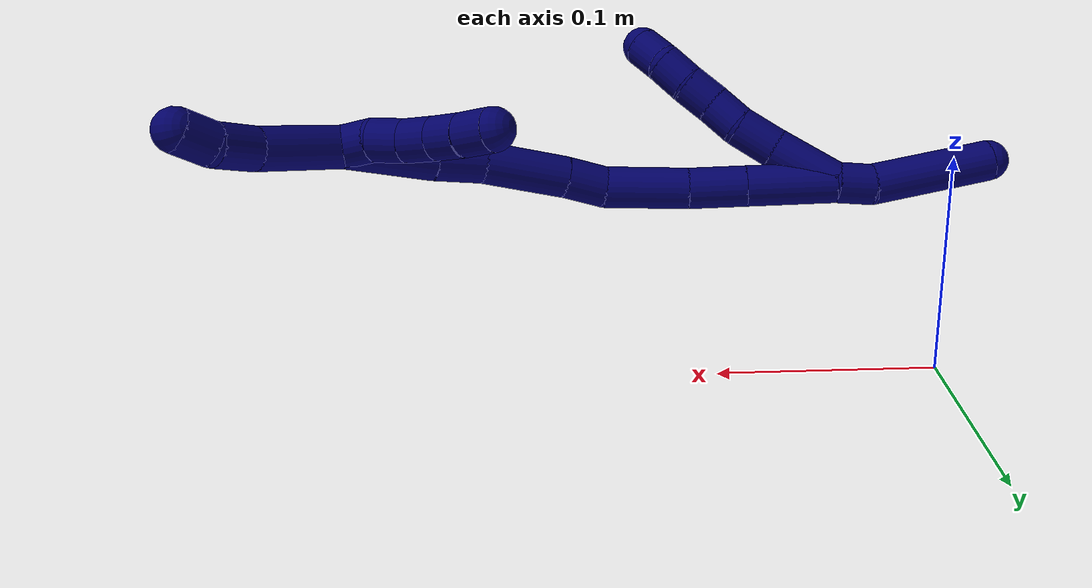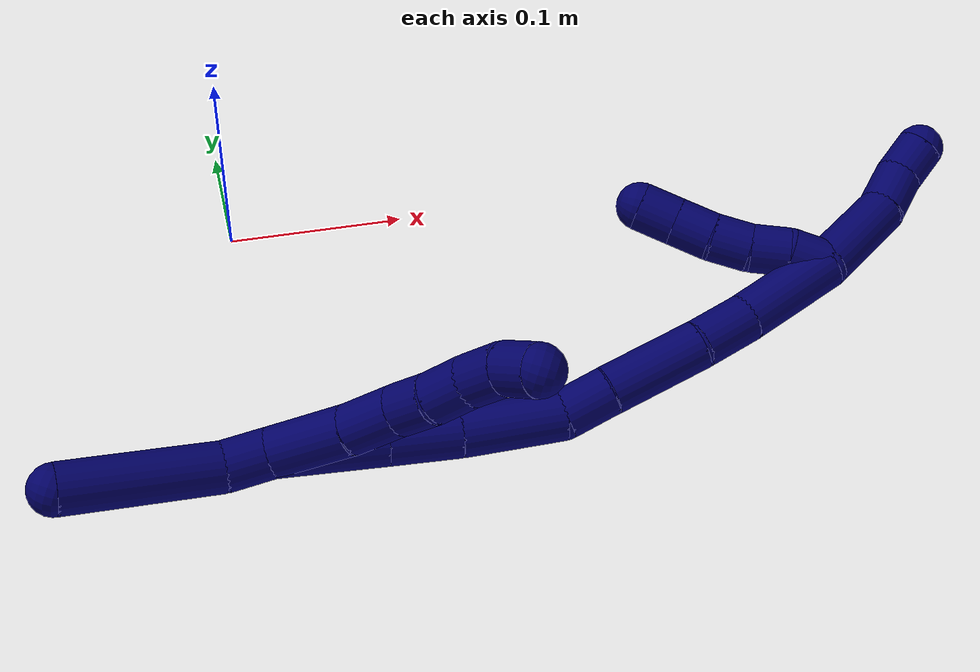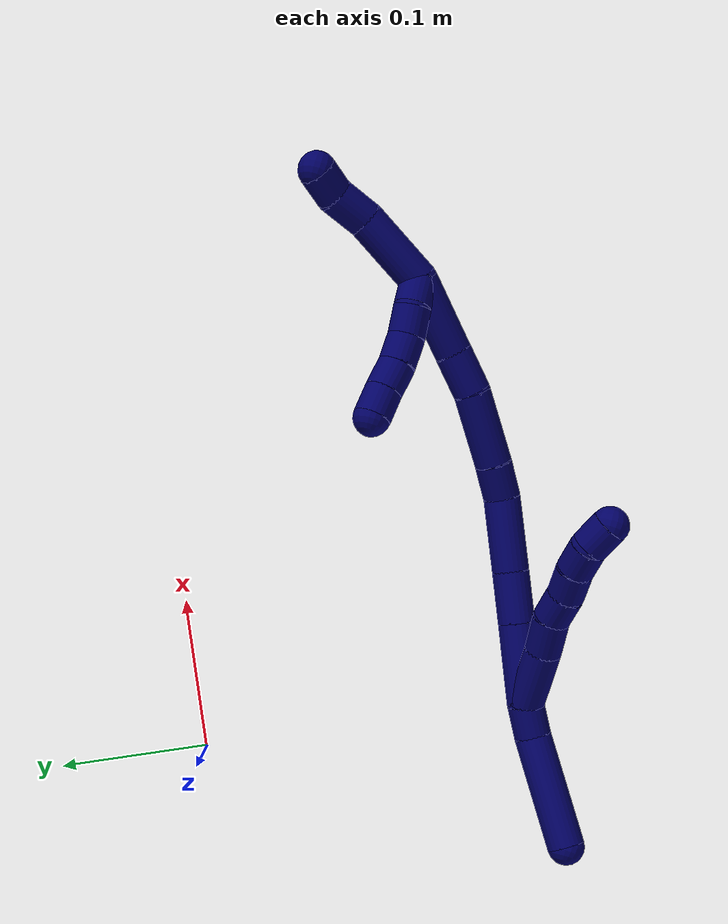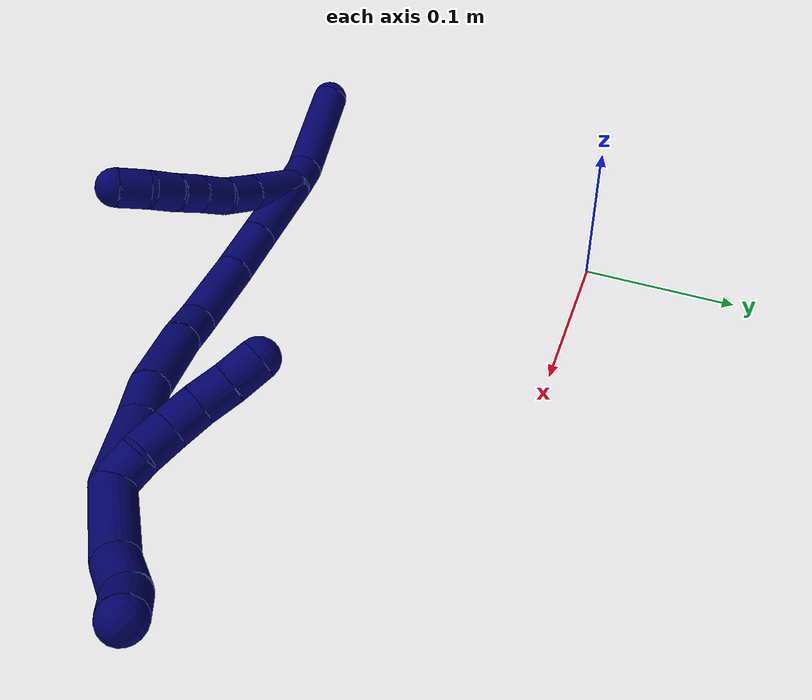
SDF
<sdf version="1.7">
 <world name="default">
  <model name="7">
   <static>0</static>
   <link name="7">
    <collision name="collision-cylinder-e_1_2_8">
     <pose>0.012356 -0.005308 -0.016341 2.8275 0.623466 2.2281</pose>
     <geometry><cylinder><radius>0.0125</radius><length>0.042326</length></cylinder></geometry>
     <surface>
      <friction><ode><mu>1.16</mu><mu2>1.16</mu2><slip1>0</slip1><slip2>0</slip2></ode></friction>
      <contact><ode><kp>1e+06</kp><kd>1</kd><max_vel>0</max_vel><min_depth>0.001</min_depth></ode></contact>
     </surface>
    </collision>
    <visual name="visual-cylinder-e_1_2_8">
     <pose>0.012356 -0.005308 -0.016341 2.8275 0.623466 2.2281</pose>
     <geometry><cylinder><radius>0.0125</radius><length>0.042326</length></cylinder></geometry>
     <material><ambient>0.003922 0 0.403922 1</ambient></material>
    </visual>
    <collision name="collision-cylinder-e_2_8_9">
     <pose>0.033234 -0.013397 -0.042119 2.85502 0.713821 2.40324</pose>
     <geometry><cylinder><radius>0.0125</radius><length>0.026033</length></cylinder></geometry>
     <surface>
      <friction><ode><mu>1.16</mu><mu2>1.16</mu2><slip1>0</slip1><slip2>0</slip2></ode></friction>
      <contact><ode><kp>1e+06</kp><kd>1</kd><max_vel>0</max_vel><min_depth>0.001</min_depth></ode></contact>
     </surface>
    </collision>
    <visual name="visual-cylinder-e_2_8_9">
     <pose>0.033234 -0.013397 -0.042119 2.85502 0.713821 2.40324</pose>
     <geometry><cylinder><radius>0.0125</radius><length>0.026033</length></cylinder></geometry>
     <material><ambient>0.003922 0 0.403922 1</ambient></material>
    </visual>
    <collision name="collision-cylinder-e_3_9_10">
     <pose>0.047937 -0.020838 -0.058572 2.55525 0.633104 1.6524</pose>
     <geometry><cylinder><radius>0.0125</radius><length>0.020892</length></cylinder></geometry>
     <surface>
      <friction><ode><mu>1.16</mu><mu2>1.16</mu2><slip1>0</slip1><slip2>0</slip2></ode></friction>
      <contact><ode><kp>1e+06</kp><kd>1</kd><max_vel>0</max_vel><min_depth>0.001</min_depth></ode></contact>
     </surface>
    </collision>
    <visual name="visual-cylinder-e_3_9_10">
     <pose>0.047937 -0.020838 -0.058572 2.55525 0.633104 1.6524</pose>
     <geometry><cylinder><radius>0.0125</radius><length>0.020892</length></cylinder></geometry>
     <material><ambient>0.003922 0 0.403922 1</ambient></material>
    </visual>
    <collision name="collision-cylinder-e_4_10_11">
     <pose>0.061186 -0.028694 -0.072389 2.70244 0.754746 2.11599</pose>
     <geometry><cylinder><radius>0.0125</radius><length>0.020636</length></cylinder></geometry>
     <surface>
      <friction><ode><mu>1.16</mu><mu2>1.16</mu2><slip1>0</slip1><slip2>0</slip2></ode></friction>
      <contact><ode><kp>1e+06</kp><kd>1</kd><max_vel>0</max_vel><min_depth>0.001</min_depth></ode></contact>
     </surface>
    </collision>
    <visual name="visual-cylinder-e_4_10_11">
     <pose>0.061186 -0.028694 -0.072389 2.70244 0.754746 2.11599</pose>
     <geometry><cylinder><radius>0.0125</radius><length>0.020636</length></cylinder></geometry>
     <material><ambient>0.003922 0 0.403922 1</ambient></material>
    </visual>
    <collision name="collision-cylinder-e_5_11_12">
     <pose>0.074312 -0.036343 -0.085824 2.5502 0.648714 1.66935</pose>
     <geometry><cylinder><radius>0.0125</radius><length>0.02005</length></cylinder></geometry>
     <surface>
      <friction><ode><mu>1.16</mu><mu2>1.16</mu2><slip1>0</slip1><slip2>0</slip2></ode></friction>
      <contact><ode><kp>1e+06</kp><kd>1</kd><max_vel>0</max_vel><min_depth>0.001</min_depth></ode></contact>
     </surface>
    </collision>
    <visual name="visual-cylinder-e_5_11_12">
     <pose>0.074312 -0.036343 -0.085824 2.5502 0.648714 1.66935</pose>
     <geometry><cylinder><radius>0.0125</radius><length>0.02005</length></cylinder></geometry>
     <material><ambient>0.003922 0 0.403922 1</ambient></material>
    </visual>
    <collision name="collision-cylinder-e_6_12_6">
     <pose>0.08348 -0.046884 -0.099798 2.44935 0.315319 0.830393</pose>
     <geometry><cylinder><radius>0.0125</radius><length>0.020063</length></cylinder></geometry>
     <surface>
      <friction><ode><mu>1.16</mu><mu2>1.16</mu2><slip1>0</slip1><slip2>0</slip2></ode></friction>
      <contact><ode><kp>1e+06</kp><kd>1</kd><max_vel>0</max_vel><min_depth>0.001</min_depth></ode></contact>
     </surface>
    </collision>
    <visual name="visual-cylinder-e_6_12_6">
     <pose>0.08348 -0.046884 -0.099798 2.44935 0.315319 0.830393</pose>
     <geometry><cylinder><radius>0.0125</radius><length>0.020063</length></cylinder></geometry>
     <material><ambient>0.003922 0 0.403922 1</ambient></material>
    </visual>
    <collision name="collision-cylinder-e_1_2_13">
     <pose>-0.005956 -0.003501 0.009419 0.355884 -0.535062 -0.098512</pose>
     <geometry><cylinder><radius>0.0125</radius><length>0.023362</length></cylinder></geometry>
     <surface>
      <friction><ode><mu>1.16</mu><mu2>1.16</mu2><slip1>0</slip1><slip2>0</slip2></ode></friction>
      <contact><ode><kp>1e+06</kp><kd>1</kd><max_vel>0</max_vel><min_depth>0.001</min_depth></ode></contact>
     </surface>
    </collision>
    <visual name="visual-cylinder-e_1_2_13">
     <pose>-0.005956 -0.003501 0.009419 0.355884 -0.535062 -0.098512</pose>
     <geometry><cylinder><radius>0.0125</radius><length>0.023362</length></cylinder></geometry>
     <material><ambient>0.003922 0 0.403922 1</ambient></material>
    </visual>
    <collision name="collision-cylinder-e_2_13_5">
     <pose>-0.023706 -0.024259 0.050954 0.49305 -0.312864 -0.079337</pose>
     <geometry><cylinder><radius>0.0125</radius><length>0.076638</length></cylinder></geometry>
     <surface>
      <friction><ode><mu>1.16</mu><mu2>1.16</mu2><slip1>0</slip1><slip2>0</slip2></ode></friction>
      <contact><ode><kp>1e+06</kp><kd>1</kd><max_vel>0</max_vel><min_depth>0.001</min_depth></ode></contact>
     </surface>
    </collision>
    <visual name="visual-cylinder-e_2_13_5">
     <pose>-0.023706 -0.024259 0.050954 0.49305 -0.312864 -0.079337</pose>
     <geometry><cylinder><radius>0.0125</radius><length>0.076638</length></cylinder></geometry>
     <material><ambient>0.003922 0 0.403922 1</ambient></material>
    </visual>
    <collision name="collision-cylinder-e_1_2_14">
     <pose>0.009561 0.00713 -0.024487 -2.85825 0.358658 -1.80833</pose>
     <geometry><cylinder><radius>0.0125</radius><length>0.054474</length></cylinder></geometry>
     <surface>
      <friction><ode><mu>1.16</mu><mu2>1.16</mu2><slip1>0</slip1><slip2>0</slip2></ode></friction>
      <contact><ode><kp>1e+06</kp><kd>1</kd><max_vel>0</max_vel><min_depth>0.001</min_depth></ode></contact>
     </surface>
    </collision>
    <visual name="visual-cylinder-e_1_2_14">
     <pose>0.009561 0.00713 -0.024487 -2.85825 0.358658 -1.80833</pose>
     <geometry><cylinder><radius>0.0125</radius><length>0.054474</length></cylinder></geometry>
     <material><ambient>0.003922 0 0.403922 1</ambient></material>
    </visual>
    <collision name="collision-cylinder-e_2_14_15">
     <pose>0.025372 0.018957 -0.064822 -2.85344 0.361533 -1.79967</pose>
     <geometry><cylinder><radius>0.0125</radius><length>0.035344</length></cylinder></geometry>
     <surface>
      <friction><ode><mu>1.16</mu><mu2>1.16</mu2><slip1>0</slip1><slip2>0</slip2></ode></friction>
      <contact><ode><kp>1e+06</kp><kd>1</kd><max_vel>0</max_vel><min_depth>0.001</min_depth></ode></contact>
     </surface>
    </collision>
    <visual name="visual-cylinder-e_2_14_15">
     <pose>0.025372 0.018957 -0.064822 -2.85344 0.361533 -1.79967</pose>
     <geometry><cylinder><radius>0.0125</radius><length>0.035344</length></cylinder></geometry>
     <material><ambient>0.003922 0 0.403922 1</ambient></material>
    </visual>
    <collision name="collision-cylinder-e_3_15_16">
     <pose>0.042139 0.029939 -0.103071 -2.86808 0.424532 -2.00504</pose>
     <geometry><cylinder><radius>0.0125</radius><length>0.051065</length></cylinder></geometry>
     <surface>
      <friction><ode><mu>1.16</mu><mu2>1.16</mu2><slip1>0</slip1><slip2>0</slip2></ode></friction>
      <contact><ode><kp>1e+06</kp><kd>1</kd><max_vel>0</max_vel><min_depth>0.001</min_depth></ode></contact>
     </surface>
    </collision>
    <visual name="visual-cylinder-e_3_15_16">
     <pose>0.042139 0.029939 -0.103071 -2.86808 0.424532 -2.00504</pose>
     <geometry><cylinder><radius>0.0125</radius><length>0.051065</length></cylinder></geometry>
     <material><ambient>0.003922 0 0.403922 1</ambient></material>
    </visual>
    <collision name="collision-cylinder-e_4_16_17">
     <pose>0.061292 0.039162 -0.134226 -2.8177 0.751966 -2.35679</pose>
     <geometry><cylinder><radius>0.0125</radius><length>0.025285</length></cylinder></geometry>
     <surface>
      <friction><ode><mu>1.16</mu><mu2>1.16</mu2><slip1>0</slip1><slip2>0</slip2></ode></friction>
      <contact><ode><kp>1e+06</kp><kd>1</kd><max_vel>0</max_vel><min_depth>0.001</min_depth></ode></contact>
     </surface>
    </collision>
    <visual name="visual-cylinder-e_4_16_17">
     <pose>0.061292 0.039162 -0.134226 -2.8177 0.751966 -2.35679</pose>
     <geometry><cylinder><radius>0.0125</radius><length>0.025285</length></cylinder></geometry>
     <material><ambient>0.003922 0 0.403922 1</ambient></material>
    </visual>
    <collision name="collision-cylinder-e_5_17_18">
     <pose>0.086438 0.049645 -0.160792 -2.74096 0.706493 -2.13488</pose>
     <geometry><cylinder><radius>0.0125</radius><length>0.050864</length></cylinder></geometry>
     <surface>
      <friction><ode><mu>1.16</mu><mu2>1.16</mu2><slip1>0</slip1><slip2>0</slip2></ode></friction>
      <contact><ode><kp>1e+06</kp><kd>1</kd><max_vel>0</max_vel><min_depth>0.001</min_depth></ode></contact>
     </surface>
    </collision>
    <visual name="visual-cylinder-e_5_17_18">
     <pose>0.086438 0.049645 -0.160792 -2.74096 0.706493 -2.13488</pose>
     <geometry><cylinder><radius>0.0125</radius><length>0.050864</length></cylinder></geometry>
     <material><ambient>0.003922 0 0.403922 1</ambient></material>
    </visual>
    <collision name="collision-cylinder-e_6_18_19">
     <pose>0.11212 0.063833 -0.188192 -2.53564 0.666394 -1.67242</pose>
     <geometry><cylinder><radius>0.0125</radius><length>0.029676</length></cylinder></geometry>
     <surface>
      <friction><ode><mu>1.16</mu><mu2>1.16</mu2><slip1>0</slip1><slip2>0</slip2></ode></friction>
      <contact><ode><kp>1e+06</kp><kd>1</kd><max_vel>0</max_vel><min_depth>0.001</min_depth></ode></contact>
     </surface>
    </collision>
    <visual name="visual-cylinder-e_6_18_19">
     <pose>0.11212 0.063833 -0.188192 -2.53564 0.666394 -1.67242</pose>
     <geometry><cylinder><radius>0.0125</radius><length>0.029676</length></cylinder></geometry>
     <material><ambient>0.003922 0 0.403922 1</ambient></material>
    </visual>
    <collision name="collision-cylinder-e_7_19_1">
     <pose>0.139424 0.081296 -0.214031 -2.55422 0.748443 -1.82913</pose>
     <geometry><cylinder><radius>0.0125</radius><length>0.053292</length></cylinder></geometry>
     <surface>
      <friction><ode><mu>1.16</mu><mu2>1.16</mu2><slip1>0</slip1><slip2>0</slip2></ode></friction>
      <contact><ode><kp>1e+06</kp><kd>1</kd><max_vel>0</max_vel><min_depth>0.001</min_depth></ode></contact>
     </surface>
    </collision>
    <visual name="visual-cylinder-e_7_19_1">
     <pose>0.139424 0.081296 -0.214031 -2.55422 0.748443 -1.82913</pose>
     <geometry><cylinder><radius>0.0125</radius><length>0.053292</length></cylinder></geometry>
     <material><ambient>0.003922 0 0.403922 1</ambient></material>
    </visual>
    <collision name="collision-cylinder-e_1_1_20">
     <pose>0.174347 0.108664 -0.241822 -2.17966 0.694103 -1.21217</pose>
     <geometry><cylinder><radius>0.0125</radius><length>0.052493</length></cylinder></geometry>
     <surface>
      <friction><ode><mu>1.16</mu><mu2>1.16</mu2><slip1>0</slip1><slip2>0</slip2></ode></friction>
      <contact><ode><kp>1e+06</kp><kd>1</kd><max_vel>0</max_vel><min_depth>0.001</min_depth></ode></contact>
     </surface>
    </collision>
    <visual name="visual-cylinder-e_1_1_20">
     <pose>0.174347 0.108664 -0.241822 -2.17966 0.694103 -1.21217</pose>
     <geometry><cylinder><radius>0.0125</radius><length>0.052493</length></cylinder></geometry>
     <material><ambient>0.003922 0 0.403922 1</ambient></material>
    </visual>
    <collision name="collision-cylinder-e_2_20_21">
     <pose>0.201029 0.133591 -0.256223 -1.90008 0.840717 -1.11739</pose>
     <geometry><cylinder><radius>0.0125</radius><length>0.026553</length></cylinder></geometry>
     <surface>
      <friction><ode><mu>1.16</mu><mu2>1.16</mu2><slip1>0</slip1><slip2>0</slip2></ode></friction>
      <contact><ode><kp>1e+06</kp><kd>1</kd><max_vel>0</max_vel><min_depth>0.001</min_depth></ode></contact>
     </surface>
    </collision>
    <visual name="visual-cylinder-e_2_20_21">
     <pose>0.201029 0.133591 -0.256223 -1.90008 0.840717 -1.11739</pose>
     <geometry><cylinder><radius>0.0125</radius><length>0.026553</length></cylinder></geometry>
     <material><ambient>0.003922 0 0.403922 1</ambient></material>
    </visual>
    <collision name="collision-cylinder-e_3_21_4">
     <pose>0.220085 0.145641 -0.262597 -2.33396 1.06468 -1.88647</pose>
     <geometry><cylinder><radius>0.0125</radius><length>0.020954</length></cylinder></geometry>
     <surface>
      <friction><ode><mu>1.16</mu><mu2>1.16</mu2><slip1>0</slip1><slip2>0</slip2></ode></friction>
      <contact><ode><kp>1e+06</kp><kd>1</kd><max_vel>0</max_vel><min_depth>0.001</min_depth></ode></contact>
     </surface>
    </collision>
    <visual name="visual-cylinder-e_3_21_4">
     <pose>0.220085 0.145641 -0.262597 -2.33396 1.06468 -1.88647</pose>
     <geometry><cylinder><radius>0.0125</radius><length>0.020954</length></cylinder></geometry>
     <material><ambient>0.003922 0 0.403922 1</ambient></material>
    </visual>
    <collision name="collision-cylinder-e_1_1_22">
     <pose>0.157788 0.091493 -0.220306 0.062387 0.023114 0.000721</pose>
     <geometry><cylinder><radius>0.0125</radius><length>0.02</length></cylinder></geometry>
     <surface>
      <friction><ode><mu>1.16</mu><mu2>1.16</mu2><slip1>0</slip1><slip2>0</slip2></ode></friction>
      <contact><ode><kp>1e+06</kp><kd>1</kd><max_vel>0</max_vel><min_depth>0.001</min_depth></ode></contact>
     </surface>
    </collision>
    <visual name="visual-cylinder-e_1_1_22">
     <pose>0.157788 0.091493 -0.220306 0.062387 0.023114 0.000721</pose>
     <geometry><cylinder><radius>0.0125</radius><length>0.02</length></cylinder></geometry>
     <material><ambient>0.003922 0 0.403922 1</ambient></material>
    </visual>
    <collision name="collision-cylinder-e_2_22_23">
     <pose>0.155926 0.090915 -0.200549 -0.00467 -0.210865 0.000494</pose>
     <geometry><cylinder><radius>0.0125</radius><length>0.02</length></cylinder></geometry>
     <surface>
      <friction><ode><mu>1.16</mu><mu2>1.16</mu2><slip1>0</slip1><slip2>0</slip2></ode></friction>
      <contact><ode><kp>1e+06</kp><kd>1</kd><max_vel>0</max_vel><min_depth>0.001</min_depth></ode></contact>
     </surface>
    </collision>
    <visual name="visual-cylinder-e_2_22_23">
     <pose>0.155926 0.090915 -0.200549 -0.00467 -0.210865 0.000494</pose>
     <geometry><cylinder><radius>0.0125</radius><length>0.02</length></cylinder></geometry>
     <material><ambient>0.003922 0 0.403922 1</ambient></material>
    </visual>
    <collision name="collision-cylinder-e_3_23_24">
     <pose>0.153504 0.091494 -0.180791 -0.053365 -0.032872 0.000877</pose>
     <geometry><cylinder><radius>0.0125</radius><length>0.02</length></cylinder></geometry>
     <surface>
      <friction><ode><mu>1.16</mu><mu2>1.16</mu2><slip1>0</slip1><slip2>0</slip2></ode></friction>
      <contact><ode><kp>1e+06</kp><kd>1</kd><max_vel>0</max_vel><min_depth>0.001</min_depth></ode></contact>
     </surface>
    </collision>
    <visual name="visual-cylinder-e_3_23_24">
     <pose>0.153504 0.091494 -0.180791 -0.053365 -0.032872 0.000877</pose>
     <geometry><cylinder><radius>0.0125</radius><length>0.02</length></cylinder></geometry>
     <material><ambient>0.003922 0 0.403922 1</ambient></material>
    </visual>
    <collision name="collision-cylinder-e_4_24_25">
     <pose>0.153958 0.093521 -0.160953 -0.150432 0.078271 -0.005901</pose>
     <geometry><cylinder><radius>0.0125</radius><length>0.02</length></cylinder></geometry>
     <surface>
      <friction><ode><mu>1.16</mu><mu2>1.16</mu2><slip1>0</slip1><slip2>0</slip2></ode></friction>
      <contact><ode><kp>1e+06</kp><kd>1</kd><max_vel>0</max_vel><min_depth>0.001</min_depth></ode></contact>
     </surface>
    </collision>
    <visual name="visual-cylinder-e_4_24_25">
     <pose>0.153958 0.093521 -0.160953 -0.150432 0.078271 -0.005901</pose>
     <geometry><cylinder><radius>0.0125</radius><length>0.02</length></cylinder></geometry>
     <material><ambient>0.003922 0 0.403922 1</ambient></material>
    </visual>
    <collision name="collision-cylinder-e_5_25_3">
     <pose>0.155622 0.095813 -0.141168 -0.080217 0.08839 -0.003549</pose>
     <geometry><cylinder><radius>0.0125</radius><length>0.02</length></cylinder></geometry>
     <surface>
      <friction><ode><mu>1.16</mu><mu2>1.16</mu2><slip1>0</slip1><slip2>0</slip2></ode></friction>
      <contact><ode><kp>1e+06</kp><kd>1</kd><max_vel>0</max_vel><min_depth>0.001</min_depth></ode></contact>
     </surface>
    </collision>
    <visual name="visual-cylinder-e_5_25_3">
     <pose>0.155622 0.095813 -0.141168 -0.080217 0.08839 -0.003549</pose>
     <geometry><cylinder><radius>0.0125</radius><length>0.02</length></cylinder></geometry>
     <material><ambient>0.003922 0 0.403922 1</ambient></material>
    </visual>
    <collision name="collision-sphere-3">
     <pose>0.156505 0.096611 -0.131239 0 -0 0</pose>
     <geometry><sphere><radius>0.0125</radius></sphere></geometry>
     <surface>
      <friction><ode><mu>1.16</mu><mu2>1.16</mu2><slip1>0</slip1><slip2>0</slip2></ode></friction>
      <contact><ode><kp>1e+06</kp><kd>1</kd><max_vel>0</max_vel><min_depth>0.001</min_depth></ode></contact>
     </surface>
    </collision>
    <visual name="visual-sphere-3">
     <pose>0.156505 0.096611 -0.131239 0 -0 0</pose>
     <geometry><sphere><radius>0.0125</radius></sphere></geometry>
     <material><ambient>0.003922 0 0.403922 1</ambient></material>
    </visual>
    <collision name="collision-sphere-25">
     <pose>0.154739 0.095015 -0.151097 0 -0 0</pose>
     <geometry><sphere><radius>0.0125</radius></sphere></geometry>
     <surface>
      <friction><ode><mu>1.16</mu><mu2>1.16</mu2><slip1>0</slip1><slip2>0</slip2></ode></friction>
      <contact><ode><kp>1e+06</kp><kd>1</kd><max_vel>0</max_vel><min_depth>0.001</min_depth></ode></contact>
     </surface>
    </collision>
    <visual name="visual-sphere-25">
     <pose>0.154739 0.095015 -0.151097 0 -0 0</pose>
     <geometry><sphere><radius>0.0125</radius></sphere></geometry>
     <material><ambient>0.003922 0 0.403922 1</ambient></material>
    </visual>
    <collision name="collision-sphere-24">
     <pose>0.153176 0.092027 -0.17081 0 -0 0</pose>
     <geometry><sphere><radius>0.0125</radius></sphere></geometry>
     <surface>
      <friction><ode><mu>1.16</mu><mu2>1.16</mu2><slip1>0</slip1><slip2>0</slip2></ode></friction>
      <contact><ode><kp>1e+06</kp><kd>1</kd><max_vel>0</max_vel><min_depth>0.001</min_depth></ode></contact>
     </surface>
    </collision>
    <visual name="visual-sphere-24">
     <pose>0.153176 0.092027 -0.17081 0 -0 0</pose>
     <geometry><sphere><radius>0.0125</radius></sphere></geometry>
     <material><ambient>0.003922 0 0.403922 1</ambient></material>
    </visual>
    <collision name="collision-sphere-23">
     <pose>0.153833 0.090961 -0.190771 0 -0 0</pose>
     <geometry><sphere><radius>0.0125</radius></sphere></geometry>
     <surface>
      <friction><ode><mu>1.16</mu><mu2>1.16</mu2><slip1>0</slip1><slip2>0</slip2></ode></friction>
      <contact><ode><kp>1e+06</kp><kd>1</kd><max_vel>0</max_vel><min_depth>0.001</min_depth></ode></contact>
     </surface>
    </collision>
    <visual name="visual-sphere-23">
     <pose>0.153833 0.090961 -0.190771 0 -0 0</pose>
     <geometry><sphere><radius>0.0125</radius></sphere></geometry>
     <material><ambient>0.003922 0 0.403922 1</ambient></material>
    </visual>
    <collision name="collision-sphere-22">
     <pose>0.158019 0.090869 -0.210328 0 -0 0</pose>
     <geometry><sphere><radius>0.0125</radius></sphere></geometry>
     <surface>
      <friction><ode><mu>1.16</mu><mu2>1.16</mu2><slip1>0</slip1><slip2>0</slip2></ode></friction>
      <contact><ode><kp>1e+06</kp><kd>1</kd><max_vel>0</max_vel><min_depth>0.001</min_depth></ode></contact>
     </surface>
    </collision>
    <visual name="visual-sphere-22">
     <pose>0.158019 0.090869 -0.210328 0 -0 0</pose>
     <geometry><sphere><radius>0.0125</radius></sphere></geometry>
     <material><ambient>0.003922 0 0.403922 1</ambient></material>
    </visual>
    <collision name="collision-sphere-4">
     <pose>0.229249 0.149311 -0.266108 0 -0 0</pose>
     <geometry><sphere><radius>0.0125</radius></sphere></geometry>
     <surface>
      <friction><ode><mu>1.16</mu><mu2>1.16</mu2><slip1>0</slip1><slip2>0</slip2></ode></friction>
      <contact><ode><kp>1e+06</kp><kd>1</kd><max_vel>0</max_vel><min_depth>0.001</min_depth></ode></contact>
     </surface>
    </collision>
    <visual name="visual-sphere-4">
     <pose>0.229249 0.149311 -0.266108 0 -0 0</pose>
     <geometry><sphere><radius>0.0125</radius></sphere></geometry>
     <material><ambient>0.003922 0 0.403922 1</ambient></material>
    </visual>
    <collision name="collision-sphere-21">
     <pose>0.210921 0.14197 -0.259086 0 -0 0</pose>
     <geometry><sphere><radius>0.0125</radius></sphere></geometry>
     <surface>
      <friction><ode><mu>1.16</mu><mu2>1.16</mu2><slip1>0</slip1><slip2>0</slip2></ode></friction>
      <contact><ode><kp>1e+06</kp><kd>1</kd><max_vel>0</max_vel><min_depth>0.001</min_depth></ode></contact>
     </surface>
    </collision>
    <visual name="visual-sphere-21">
     <pose>0.210921 0.14197 -0.259086 0 -0 0</pose>
     <geometry><sphere><radius>0.0125</radius></sphere></geometry>
     <material><ambient>0.003922 0 0.403922 1</ambient></material>
    </visual>
    <collision name="collision-sphere-20">
     <pose>0.191136 0.125213 -0.25336 0 -0 0</pose>
     <geometry><sphere><radius>0.0125</radius></sphere></geometry>
     <surface>
      <friction><ode><mu>1.16</mu><mu2>1.16</mu2><slip1>0</slip1><slip2>0</slip2></ode></friction>
      <contact><ode><kp>1e+06</kp><kd>1</kd><max_vel>0</max_vel><min_depth>0.001</min_depth></ode></contact>
     </surface>
    </collision>
    <visual name="visual-sphere-20">
     <pose>0.191136 0.125213 -0.25336 0 -0 0</pose>
     <geometry><sphere><radius>0.0125</radius></sphere></geometry>
     <material><ambient>0.003922 0 0.403922 1</ambient></material>
    </visual>
    <collision name="collision-sphere-12">
     <pose>0.080369 -0.040797 -0.092456 0 -0 0</pose>
     <geometry><sphere><radius>0.0125</radius></sphere></geometry>
     <surface>
      <friction><ode><mu>1.16</mu><mu2>1.16</mu2><slip1>0</slip1><slip2>0</slip2></ode></friction>
      <contact><ode><kp>1e+06</kp><kd>1</kd><max_vel>0</max_vel><min_depth>0.001</min_depth></ode></contact>
     </surface>
    </collision>
    <visual name="visual-sphere-12">
     <pose>0.080369 -0.040797 -0.092456 0 -0 0</pose>
     <geometry><sphere><radius>0.0125</radius></sphere></geometry>
     <material><ambient>0.003922 0 0.403922 1</ambient></material>
    </visual>
    <collision name="collision-sphere-11">
     <pose>0.068255 -0.031889 -0.079192 0 -0 0</pose>
     <geometry><sphere><radius>0.0125</radius></sphere></geometry>
     <surface>
      <friction><ode><mu>1.16</mu><mu2>1.16</mu2><slip1>0</slip1><slip2>0</slip2></ode></friction>
      <contact><ode><kp>1e+06</kp><kd>1</kd><max_vel>0</max_vel><min_depth>0.001</min_depth></ode></contact>
     </surface>
    </collision>
    <visual name="visual-sphere-11">
     <pose>0.068255 -0.031889 -0.079192 0 -0 0</pose>
     <geometry><sphere><radius>0.0125</radius></sphere></geometry>
     <material><ambient>0.003922 0 0.403922 1</ambient></material>
    </visual>
    <collision name="collision-sphere-10">
     <pose>0.054117 -0.025498 -0.065586 0 -0 0</pose>
     <geometry><sphere><radius>0.0125</radius></sphere></geometry>
     <surface>
      <friction><ode><mu>1.16</mu><mu2>1.16</mu2><slip1>0</slip1><slip2>0</slip2></ode></friction>
      <contact><ode><kp>1e+06</kp><kd>1</kd><max_vel>0</max_vel><min_depth>0.001</min_depth></ode></contact>
     </surface>
    </collision>
    <visual name="visual-sphere-10">
     <pose>0.054117 -0.025498 -0.065586 0 -0 0</pose>
     <geometry><sphere><radius>0.0125</radius></sphere></geometry>
     <material><ambient>0.003922 0 0.403922 1</ambient></material>
    </visual>
    <collision name="collision-sphere-9">
     <pose>0.041757 -0.016179 -0.051557 0 -0 0</pose>
     <geometry><sphere><radius>0.0125</radius></sphere></geometry>
     <surface>
      <friction><ode><mu>1.16</mu><mu2>1.16</mu2><slip1>0</slip1><slip2>0</slip2></ode></friction>
      <contact><ode><kp>1e+06</kp><kd>1</kd><max_vel>0</max_vel><min_depth>0.001</min_depth></ode></contact>
     </surface>
    </collision>
    <visual name="visual-sphere-9">
     <pose>0.041757 -0.016179 -0.051557 0 -0 0</pose>
     <geometry><sphere><radius>0.0125</radius></sphere></geometry>
     <material><ambient>0.003922 0 0.403922 1</ambient></material>
    </visual>
    <collision name="collision-sphere-2">
     <geometry><sphere><radius>0.0125</radius></sphere></geometry>
     <surface>
      <friction><ode><mu>1.16</mu><mu2>1.16</mu2><slip1>0</slip1><slip2>0</slip2></ode></friction>
      <contact><ode><kp>1e+06</kp><kd>1</kd><max_vel>0</max_vel><min_depth>0.001</min_depth></ode></contact>
     </surface>
    </collision>
    <visual name="visual-sphere-2">
     <geometry><sphere><radius>0.0125</radius></sphere></geometry>
     <material><ambient>0.003922 0 0.403922 1</ambient></material>
    </visual>
    <collision name="collision-sphere-19">
     <pose>0.121292 0.070476 -0.197779 0 -0 0</pose>
     <geometry><sphere><radius>0.0125</radius></sphere></geometry>
     <surface>
      <friction><ode><mu>1.16</mu><mu2>1.16</mu2><slip1>0</slip1><slip2>0</slip2></ode></friction>
      <contact><ode><kp>1e+06</kp><kd>1</kd><max_vel>0</max_vel><min_depth>0.001</min_depth></ode></contact>
     </surface>
    </collision>
    <visual name="visual-sphere-19">
     <pose>0.121292 0.070476 -0.197779 0 -0 0</pose>
     <geometry><sphere><radius>0.0125</radius></sphere></geometry>
     <material><ambient>0.003922 0 0.403922 1</ambient></material>
    </visual>
    <collision name="collision-sphere-8">
     <pose>0.024712 -0.010616 -0.032682 0 -0 0</pose>
     <geometry><sphere><radius>0.0125</radius></sphere></geometry>
     <surface>
      <friction><ode><mu>1.16</mu><mu2>1.16</mu2><slip1>0</slip1><slip2>0</slip2></ode></friction>
      <contact><ode><kp>1e+06</kp><kd>1</kd><max_vel>0</max_vel><min_depth>0.001</min_depth></ode></contact>
     </surface>
    </collision>
    <visual name="visual-sphere-8">
     <pose>0.024712 -0.010616 -0.032682 0 -0 0</pose>
     <geometry><sphere><radius>0.0125</radius></sphere></geometry>
     <material><ambient>0.003922 0 0.403922 1</ambient></material>
    </visual>
    <collision name="collision-sphere-6">
     <pose>0.086591 -0.052971 -0.107139 0 -0 0</pose>
     <geometry><sphere><radius>0.0125</radius></sphere></geometry>
     <surface>
      <friction><ode><mu>1.16</mu><mu2>1.16</mu2><slip1>0</slip1><slip2>0</slip2></ode></friction>
      <contact><ode><kp>1e+06</kp><kd>1</kd><max_vel>0</max_vel><min_depth>0.001</min_depth></ode></contact>
     </surface>
    </collision>
    <visual name="visual-sphere-6">
     <pose>0.086591 -0.052971 -0.107139 0 -0 0</pose>
     <geometry><sphere><radius>0.0125</radius></sphere></geometry>
     <material><ambient>0.003922 0 0.403922 1</ambient></material>
    </visual>
    <collision name="collision-sphere-13">
     <pose>-0.011912 -0.007002 0.018837 0 -0 0</pose>
     <geometry><sphere><radius>0.0125</radius></sphere></geometry>
     <surface>
      <friction><ode><mu>1.16</mu><mu2>1.16</mu2><slip1>0</slip1><slip2>0</slip2></ode></friction>
      <contact><ode><kp>1e+06</kp><kd>1</kd><max_vel>0</max_vel><min_depth>0.001</min_depth></ode></contact>
     </surface>
    </collision>
    <visual name="visual-sphere-13">
     <pose>-0.011912 -0.007002 0.018837 0 -0 0</pose>
     <geometry><sphere><radius>0.0125</radius></sphere></geometry>
     <material><ambient>0.003922 0 0.403922 1</ambient></material>
    </visual>
    <collision name="collision-sphere-5">
     <pose>-0.0355 -0.041515 0.08307 0 -0 0</pose>
     <geometry><sphere><radius>0.0125</radius></sphere></geometry>
     <surface>
      <friction><ode><mu>1.16</mu><mu2>1.16</mu2><slip1>0</slip1><slip2>0</slip2></ode></friction>
      <contact><ode><kp>1e+06</kp><kd>1</kd><max_vel>0</max_vel><min_depth>0.001</min_depth></ode></contact>
     </surface>
    </collision>
    <visual name="visual-sphere-5">
     <pose>-0.0355 -0.041515 0.08307 0 -0 0</pose>
     <geometry><sphere><radius>0.0125</radius></sphere></geometry>
     <material><ambient>0.003922 0 0.403922 1</ambient></material>
    </visual>
    <collision name="collision-sphere-14">
     <pose>0.019121 0.01426 -0.048974 0 -0 0</pose>
     <geometry><sphere><radius>0.0125</radius></sphere></geometry>
     <surface>
      <friction><ode><mu>1.16</mu><mu2>1.16</mu2><slip1>0</slip1><slip2>0</slip2></ode></friction>
      <contact><ode><kp>1e+06</kp><kd>1</kd><max_vel>0</max_vel><min_depth>0.001</min_depth></ode></contact>
     </surface>
    </collision>
    <visual name="visual-sphere-14">
     <pose>0.019121 0.01426 -0.048974 0 -0 0</pose>
     <geometry><sphere><radius>0.0125</radius></sphere></geometry>
     <material><ambient>0.003922 0 0.403922 1</ambient></material>
    </visual>
    <collision name="collision-sphere-15">
     <pose>0.031623 0.023655 -0.08067 0 -0 0</pose>
     <geometry><sphere><radius>0.0125</radius></sphere></geometry>
     <surface>
      <friction><ode><mu>1.16</mu><mu2>1.16</mu2><slip1>0</slip1><slip2>0</slip2></ode></friction>
      <contact><ode><kp>1e+06</kp><kd>1</kd><max_vel>0</max_vel><min_depth>0.001</min_depth></ode></contact>
     </surface>
    </collision>
    <visual name="visual-sphere-15">
     <pose>0.031623 0.023655 -0.08067 0 -0 0</pose>
     <geometry><sphere><radius>0.0125</radius></sphere></geometry>
     <material><ambient>0.003922 0 0.403922 1</ambient></material>
    </visual>
    <collision name="collision-sphere-16">
     <pose>0.052656 0.036223 -0.125472 0 -0 0</pose>
     <geometry><sphere><radius>0.0125</radius></sphere></geometry>
     <surface>
      <friction><ode><mu>1.16</mu><mu2>1.16</mu2><slip1>0</slip1><slip2>0</slip2></ode></friction>
      <contact><ode><kp>1e+06</kp><kd>1</kd><max_vel>0</max_vel><min_depth>0.001</min_depth></ode></contact>
     </surface>
    </collision>
    <visual name="visual-sphere-16">
     <pose>0.052656 0.036223 -0.125472 0 -0 0</pose>
     <geometry><sphere><radius>0.0125</radius></sphere></geometry>
     <material><ambient>0.003922 0 0.403922 1</ambient></material>
    </visual>
    <collision name="collision-sphere-17">
     <pose>0.069928 0.042101 -0.142979 0 -0 0</pose>
     <geometry><sphere><radius>0.0125</radius></sphere></geometry>
     <surface>
      <friction><ode><mu>1.16</mu><mu2>1.16</mu2><slip1>0</slip1><slip2>0</slip2></ode></friction>
      <contact><ode><kp>1e+06</kp><kd>1</kd><max_vel>0</max_vel><min_depth>0.001</min_depth></ode></contact>
     </surface>
    </collision>
    <visual name="visual-sphere-17">
     <pose>0.069928 0.042101 -0.142979 0 -0 0</pose>
     <geometry><sphere><radius>0.0125</radius></sphere></geometry>
     <material><ambient>0.003922 0 0.403922 1</ambient></material>
    </visual>
    <collision name="collision-sphere-18">
     <pose>0.102948 0.05719 -0.178605 0 -0 0</pose>
     <geometry><sphere><radius>0.0125</radius></sphere></geometry>
     <surface>
      <friction><ode><mu>1.16</mu><mu2>1.16</mu2><slip1>0</slip1><slip2>0</slip2></ode></friction>
      <contact><ode><kp>1e+06</kp><kd>1</kd><max_vel>0</max_vel><min_depth>0.001</min_depth></ode></contact>
     </surface>
    </collision>
    <visual name="visual-sphere-18">
     <pose>0.102948 0.05719 -0.178605 0 -0 0</pose>
     <geometry><sphere><radius>0.0125</radius></sphere></geometry>
     <material><ambient>0.003922 0 0.403922 1</ambient></material>
    </visual>
    <collision name="collision-sphere-1">
     <pose>0.157557 0.092116 -0.230284 0 -0 0</pose>
     <geometry><sphere><radius>0.0125</radius></sphere></geometry>
     <surface>
      <friction><ode><mu>1.16</mu><mu2>1.16</mu2><slip1>0</slip1><slip2>0</slip2></ode></friction>
      <contact><ode><kp>1e+06</kp><kd>1</kd><max_vel>0</max_vel><min_depth>0.001</min_depth></ode></contact>
     </surface>
    </collision>
    <visual name="visual-sphere-1">
     <pose>0.157557 0.092116 -0.230284 0 -0 0</pose>
     <geometry><sphere><radius>0.0125</radius></sphere></geometry>
     <material><ambient>0.003922 0 0.403922 1</ambient></material>
    </visual>
    <inertial>
     <pose>0.079696 0.038248 -0.112841 0 -0 0</pose>
     <mass>0.75</mass>
     <inertia><ixx>-8e-06</ixx><ixy>0</ixy><ixz>0</ixz><iyy>4.3e-05</iyy><iyz>0</iyz><izz>-6.6e-05</izz></inertia>
    </inertial>
   </link>
   <pose>-0.001185 -0.21917 0.014814 -1.0571 -1.04172 0.675833</pose>
  </model>
 </world>
</sdf>
